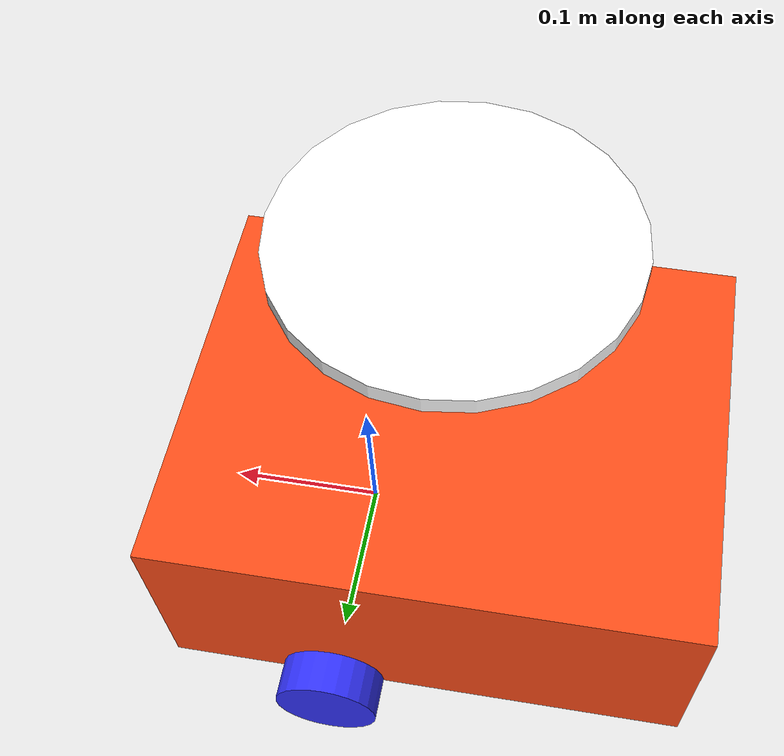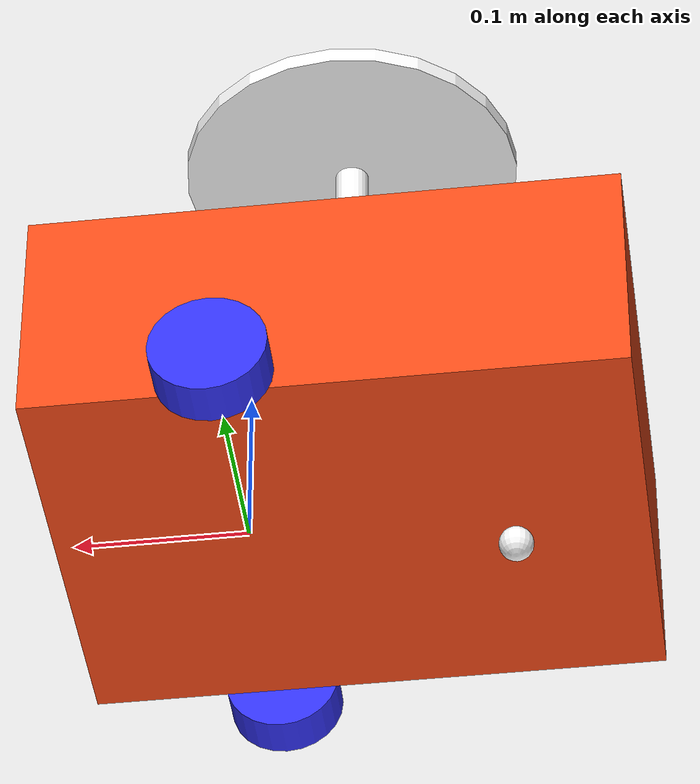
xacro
<?xml version="1.0"?>
<robot xmlns:xacro="http://www.ros.org/wiki/xacro" >

    <xacro:include filename="inertial_macros.xacro"/>

    <xacro:property name="chassis_length" value="0.335"/>
    <xacro:property name="chassis_width" value="0.265"/>
    <xacro:property name="chassis_height" value="0.138"/>
    <xacro:property name="chassis_mass" value="1.0"/>
    <xacro:property name="wheel_radius" value="0.033"/>
    <xacro:property name="wheel_thickness" value="0.026"/>
    <xacro:property name="wheel_mass" value="0.05"/>
    <xacro:property name="wheel_offset_x" value="0.226"/>
    <xacro:property name="wheel_offset_y" value="0.1485"/>
    <xacro:property name="wheel_offset_z" value="0.01"/>
    <xacro:property name="caster_wheel_radius" value="0.01"/>
    <xacro:property name="caster_wheel_mass" value="0.01"/>
    <xacro:property name="caster_wheel_offset_x" value="0.075"/>
    <xacro:property name="caster_wheel_offset_z" value="${wheel_offset_z - wheel_radius + caster_wheel_radius}"/>
    <xacro:property name="piston_length" value="0.1"/>
    <xacro:property name="piston_radius" value="0.01"/>
    <xacro:property name="piston_mass" value="0.01"/>
    <xacro:property name="piston_offset" value="${piston_length + chassis_height}"/>
    <xacro:property name="tray_height" value="0.01"/>
    <xacro:property name="tray_radius" value="0.1"/>
    <xacro:property name="tray_mass" value="0.1"/>
    <xacro:property name="tray_offset" value="${piston_length/2}"/>

    <material name="white">
        <color rgba="1 1 1 1" />
    </material>

    <material name="orange">
        <color rgba="1 0.3 0.1 1"/>
    </material>

    <material name="blue">
        <color rgba="0.2 0.2 1 1"/>
    </material>

    <material name="black">
        <color rgba="0 0 0 1"/>
    </material>

    <material name="red">
        <color rgba="1 0 0 1"/>
    </material>

    <!-- BASE LINK -->

    <link name="base_link">

    </link>

    <!-- BASE_FOOTPRINT LINK -->

    <joint name="base_footprint_joint" type="fixed">
        <parent link="base_link"/>
        <child link="base_footprint"/>
        <origin xyz="0 0 0" rpy="0 0 0"/>
    </joint>

    <link name="base_footprint">
    </link>

    <!-- CHASSIS LINK -->

    <joint name="chassis_joint" type="fixed">
        <parent link="base_link"/>
        <child link="chassis"/>
        <origin xyz="${-wheel_offset_x} 0 ${-wheel_offset_z}"/>
    </joint>

    <link name="chassis">
        <visual>
            <origin xyz="${chassis_length/2} 0 ${chassis_height/2}"/>
            <geometry>
                <box size="${chassis_length} ${chassis_width} ${chassis_height}"/>
            </geometry>
            <material name="orange"/>
        </visual>
        <collision>
            <origin xyz="${chassis_length/2} 0 ${chassis_height/2}"/>
            <geometry>
                <box size="${chassis_length} ${chassis_width} ${chassis_height}"/>
            </geometry>
        </collision>
        <xacro:inertial_box mass="0.5" x="${chassis_length}" y="${chassis_width}" z="${chassis_height}">
            <origin xyz="${chassis_length/2} 0 ${chassis_height/2}" rpy="0 0 0"/>
        </xacro:inertial_box>
    </link>

    <gazebo reference="chassis">
        <material>Gazebo/Orange</material>
    </gazebo>

    <!-- LEFT WHEEL LINK -->

    <joint name="left_wheel_joint" type="continuous">
        <parent link="base_link"/>
        <child link="left_wheel"/>
        <origin xyz="0 ${wheel_offset_y} 0" rpy="-${pi/2} 0 0" />
        <axis xyz="0 0 1"/>
    </joint>

    <link name="left_wheel">
        <visual>
            <geometry>
                <cylinder radius="${wheel_radius}" length="${wheel_thickness}"/>
            </geometry>
            <material name="blue"/>
        </visual>
        <collision>
            <geometry>
                <sphere radius="${wheel_radius}"/>
            </geometry>
        </collision>
        <xacro:inertial_cylinder mass="${wheel_mass}" length="${wheel_thickness}" radius="${wheel_radius}">
            <origin xyz="0 0 0" rpy="0 0 0"/>
        </xacro:inertial_cylinder>
    </link>

    <gazebo reference="left_wheel">
        <material>Gazebo/Blue</material>
    </gazebo>

    <!-- RIGHT WHEEL LINK -->

    <joint name="right_wheel_joint" type="continuous">
        <parent link="base_link"/>
        <child link="right_wheel"/>
        <origin xyz="0 ${-wheel_offset_y} 0" rpy="${pi/2} 0 0" />
        <axis xyz="0 0 -1"/>
    </joint>

    <link name="right_wheel">
        <visual>
            <geometry>
                <cylinder radius="${wheel_radius}" length="${wheel_thickness}"/>
            </geometry>
            <material name="blue"/>
        </visual>
        <collision>
            <geometry>
                <sphere radius="${wheel_radius}"/>
            </geometry>
        </collision>
        <xacro:inertial_cylinder mass="${wheel_mass}" length="${wheel_thickness}" radius="${wheel_radius}">
            <origin xyz="0 0 0" rpy="0 0 0"/>
        </xacro:inertial_cylinder>
    </link>

    <gazebo reference="right_wheel">
        <material>Gazebo/Blue</material>
    </gazebo>

    <!-- CASTER WHEEL LINK -->

    <joint name="caster_wheel_joint" type="fixed">
        <parent link="chassis"/>
        <child link="caster_wheel"/>
        <origin xyz="${caster_wheel_offset_x} 0 ${caster_wheel_offset_z}"/>
    </joint>

    <link name="caster_wheel">
        <visual>
            <geometry>
                <sphere radius="${caster_wheel_radius}"/>
            </geometry>
            <material name="white"/>
        </visual>
        <collision>
            <geometry>
                <sphere radius="${caster_wheel_radius}"/>
            </geometry>
        </collision>
        <xacro:inertial_sphere mass="${caster_wheel_mass}" radius="${caster_wheel_radius}">
            <origin xyz="0 0 0" rpy="0 0 0"/>
        </xacro:inertial_sphere>
    </link>

    <gazebo reference="caster_wheel">
        <material>Gazebo/White</material>
        <mu1 value="0.001"/>
        <mu2 value="0.001"/>
    </gazebo>

    <!-- Piston -->
    <joint name="joint_piston" type="prismatic">
        <parent link="chassis"/>
        <child link="piston"/>
        <origin xyz="${chassis_length/2} 0 ${piston_offset}"/>
        <axis xyz="0 0 1" />
        <limit effort="1000.0" lower="0" upper="10." velocity="0.5" />
    </joint>

    <link name="piston">
        <visual>
            <geometry>
                <cylinder radius="${piston_radius}" length="${piston_length}"/>
            </geometry>
            <material name="white"/>
        </visual>
        <collision>
            <geometry>
                <cylinder radius="${piston_radius}" length="${piston_length}"/>
            </geometry>
        </collision>
        <xacro:inertial_cylinder mass="${piston_mass}" length="${piston_length}" radius="${piston_radius}">
            <origin xyz="${chassis_length/2} 0 ${piston_offset}" rpy="0 0 0"/>
        </xacro:inertial_cylinder>
    </link>

    <gazebo reference="piston">
        <material>Gazebo/White</material>
        <selfCollide>true</selfCollide>
        <gravity>0</gravity>
    </gazebo>

    <!-- Tray -->
    <joint name="tray_joint" type="fixed">
        <parent link="piston"/>
        <child link="tray"/>
        <origin xyz="0 0 ${tray_offset}"/>
    </joint>

    <link name="tray">
        <visual>
            <geometry>
                <cylinder radius="${tray_radius}" length="${tray_height}"/>
            </geometry>
            <material name="white"/>
        </visual>
        <collision>
            <geometry>
                <cylinder radius="${tray_radius}" length="${tray_height}"/>
            </geometry>
        </collision>
        <xacro:inertial_cylinder mass="${tray_mass}" length="${tray_height}" radius="${piston_radius}">
            <origin xyz="0 0 0" rpy="0 0 0"/>
        </xacro:inertial_cylinder>
    </link>

    <gazebo reference="tray">
        <material>Gazebo/White</material>
    </gazebo>

</robot>
